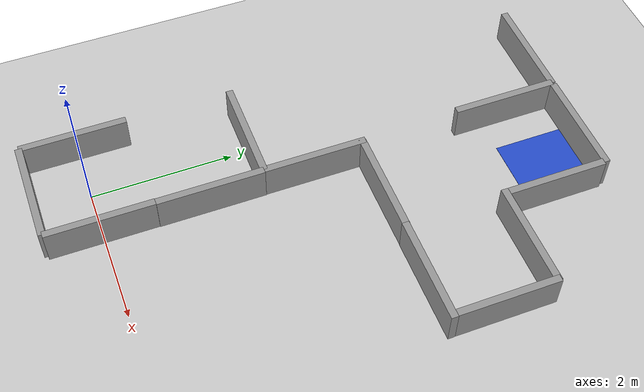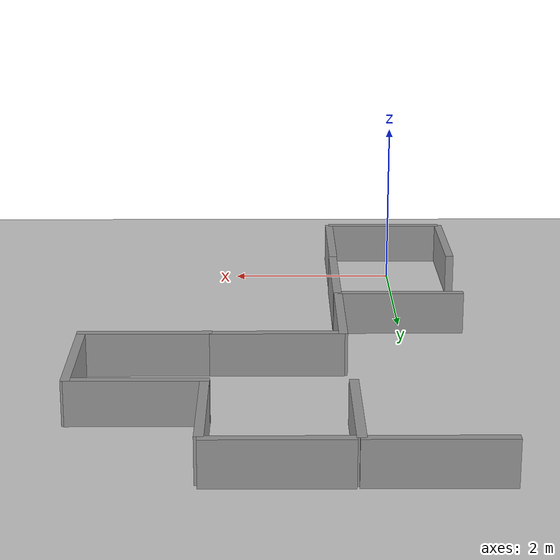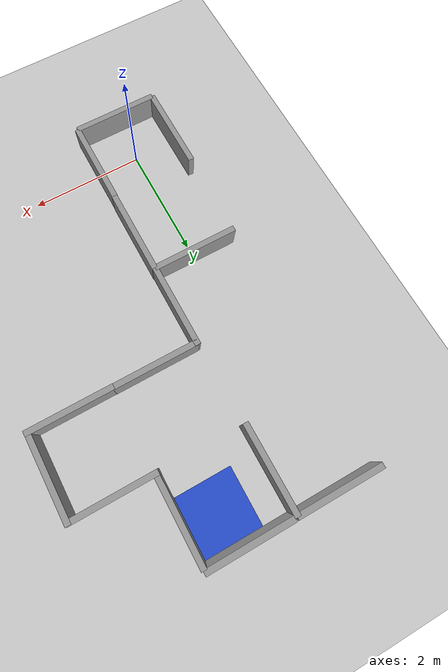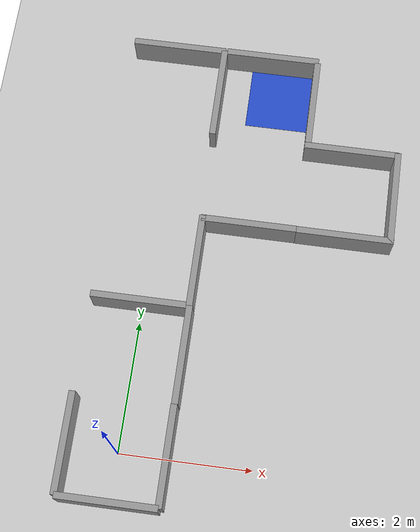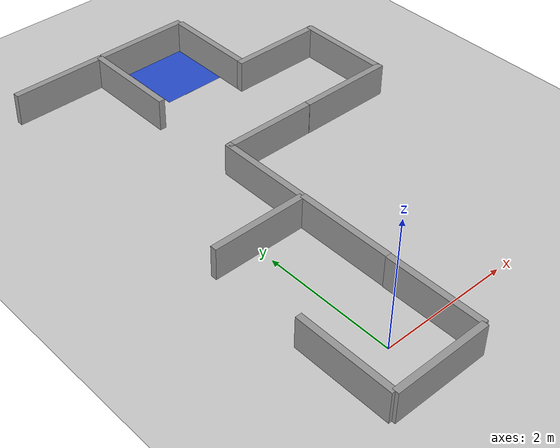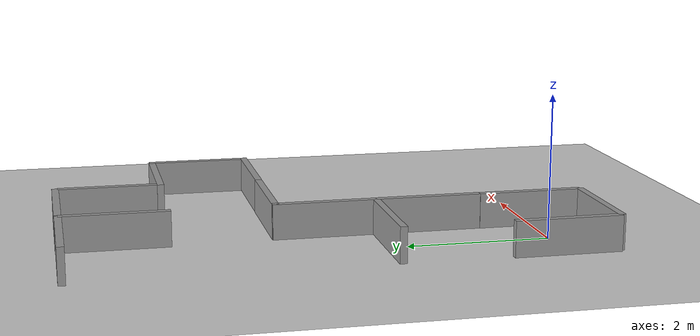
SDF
<sdf version="1.7">
 <world name="default">
  <model name="ground_plane">
   <static>1</static>
   <link name="link">
    <collision name="collision">
     <geometry><plane><normal>0 0 1</normal><size>100 100</size></plane></geometry>
     <surface>
      <contact><collide_bitmask>65535</collide_bitmask></contact>
      <friction><ode><mu>100</mu><mu2>50</mu2></ode></friction>
     </surface>
    </collision>
    <visual name="visual">
     <cast_shadows>0</cast_shadows>
     <geometry><plane><normal>0 0 1</normal><size>100 100</size></plane></geometry>
     <material>
      <script><uri>file://media/materials/scripts/gazebo.material</uri><name>Gazebo/Grey</name></script>
     </material>
    </visual>
   </link>
  </model>
  <model name="wall_big">
   <link name="link">
    <inertial>
     <mass>1</mass>
     <inertia>
      <ixx>0.166667</ixx>
      <ixy>0</ixy>
      <ixz>0</ixz>
      <iyy>0.166667</iyy>
      <iyz>0</iyz>
      <izz>0.166667</izz>
     </inertia>
    </inertial>
    <visual name="visual">
     <geometry><box><size>0.1 1.5 0.5</size></box></geometry>
     <material>
      <script><name>Gazebo/Grey</name><uri>file://media/materials/scripts/gazebo.material</uri></script>
      <shader type="pixel"><normal_map>__default__</normal_map></shader>
      <ambient>0.3 0.3 0.3 1</ambient>
      <diffuse>0.7 0.7 0.7 1</diffuse>
      <specular>0.01 0.01 0.01 1</specular>
      <emissive>0 0 0 1</emissive>
     </material>
    </visual>
    <collision name="collision">
     <geometry><box><size>0.1 1.5 0.5</size></box></geometry>
     <surface>
      <friction>
       <ode><mu>1</mu><mu2>1</mu2><fdir1>0 0 0</fdir1><slip1>0</slip1><slip2>0</slip2></ode>
       <torsional>
        <coefficient>1</coefficient>
        <patch_radius>0</patch_radius>
        <surface_radius>0</surface_radius>
        <use_patch_radius>1</use_patch_radius>
        <ode><slip>0</slip></ode>
       </torsional>
      </friction>
      <bounce><restitution_coefficient>0</restitution_coefficient><threshold>1e+06</threshold></bounce>
      <contact>
       <collide_without_contact>0</collide_without_contact>
       <collide_without_contact_bitmask>1</collide_without_contact_bitmask>
       <collide_bitmask>1</collide_bitmask>
       <ode>
        <soft_cfm>0</soft_cfm>
        <soft_erp>0.2</soft_erp>
        <kp>1e+13</kp>
        <kd>1</kd>
        <max_vel>0.01</max_vel>
        <min_depth>0</min_depth>
       </ode>
       <bullet>
        <split_impulse>1</split_impulse>
        <split_impulse_penetration_threshold>-0.01</split_impulse_penetration_threshold>
        <soft_cfm>0</soft_cfm>
        <soft_erp>0.2</soft_erp>
        <kp>1e+13</kp>
        <kd>1</kd>
       </bullet>
      </contact>
     </surface>
    </collision>
   </link>
   <static>1</static>
   <pose>0 -0.75 0.250003 1.1e-05 -0 1.5708</pose>
  </model>
  <model name="wall_big_clone">
   <link name="link">
    <inertial>
     <mass>1</mass>
     <inertia>
      <ixx>0.166667</ixx>
      <ixy>0</ixy>
      <ixz>0</ixz>
      <iyy>0.166667</iyy>
      <iyz>0</iyz>
      <izz>0.166667</izz>
     </inertia>
    </inertial>
    <visual name="visual">
     <geometry><box><size>0.1 1.5 0.5</size></box></geometry>
     <material>
      <script><name>Gazebo/Grey</name><uri>file://media/materials/scripts/gazebo.material</uri></script>
      <shader type="pixel"><normal_map>__default__</normal_map></shader>
      <ambient>0.3 0.3 0.3 1</ambient>
      <diffuse>0.7 0.7 0.7 1</diffuse>
      <specular>0.01 0.01 0.01 1</specular>
      <emissive>0 0 0 1</emissive>
     </material>
    </visual>
    <collision name="collision">
     <geometry><box><size>0.1 1.5 0.5</size></box></geometry>
     <surface>
      <friction>
       <ode><mu>1</mu><mu2>1</mu2><fdir1>0 0 0</fdir1><slip1>0</slip1><slip2>0</slip2></ode>
       <torsional>
        <coefficient>1</coefficient>
        <patch_radius>0</patch_radius>
        <surface_radius>0</surface_radius>
        <use_patch_radius>1</use_patch_radius>
        <ode><slip>0</slip></ode>
       </torsional>
      </friction>
      <bounce><restitution_coefficient>0</restitution_coefficient><threshold>1e+06</threshold></bounce>
      <contact>
       <collide_without_contact>0</collide_without_contact>
       <collide_without_contact_bitmask>1</collide_without_contact_bitmask>
       <collide_bitmask>1</collide_bitmask>
       <ode>
        <soft_cfm>0</soft_cfm>
        <soft_erp>0.2</soft_erp>
        <kp>1e+13</kp>
        <kd>1</kd>
        <max_vel>0.01</max_vel>
        <min_depth>0</min_depth>
       </ode>
       <bullet>
        <split_impulse>1</split_impulse>
        <split_impulse_penetration_threshold>-0.01</split_impulse_penetration_threshold>
        <soft_cfm>0</soft_cfm>
        <soft_erp>0.2</soft_erp>
        <kp>1e+13</kp>
        <kd>1</kd>
       </bullet>
      </contact>
     </surface>
    </collision>
   </link>
   <static>1</static>
   <pose>-0.75 0 0.250003 1.2e-05 -0 0</pose>
  </model>
  <model name="wall_big_clone_clone">
   <link name="link">
    <inertial>
     <mass>1</mass>
     <inertia>
      <ixx>0.166667</ixx>
      <ixy>0</ixy>
      <ixz>0</ixz>
      <iyy>0.166667</iyy>
      <iyz>0</iyz>
      <izz>0.166667</izz>
     </inertia>
    </inertial>
    <visual name="visual">
     <geometry><box><size>0.1 1.5 0.5</size></box></geometry>
     <material>
      <script><name>Gazebo/Grey</name><uri>file://media/materials/scripts/gazebo.material</uri></script>
      <shader type="pixel"><normal_map>__default__</normal_map></shader>
      <ambient>0.3 0.3 0.3 1</ambient>
      <diffuse>0.7 0.7 0.7 1</diffuse>
      <specular>0.01 0.01 0.01 1</specular>
      <emissive>0 0 0 1</emissive>
     </material>
    </visual>
    <collision name="collision">
     <geometry><box><size>0.1 1.5 0.5</size></box></geometry>
     <surface>
      <friction>
       <ode><mu>1</mu><mu2>1</mu2><fdir1>0 0 0</fdir1><slip1>0</slip1><slip2>0</slip2></ode>
       <torsional>
        <coefficient>1</coefficient>
        <patch_radius>0</patch_radius>
        <surface_radius>0</surface_radius>
        <use_patch_radius>1</use_patch_radius>
        <ode><slip>0</slip></ode>
       </torsional>
      </friction>
      <bounce><restitution_coefficient>0</restitution_coefficient><threshold>1e+06</threshold></bounce>
      <contact>
       <collide_without_contact>0</collide_without_contact>
       <collide_without_contact_bitmask>1</collide_without_contact_bitmask>
       <collide_bitmask>1</collide_bitmask>
       <ode>
        <soft_cfm>0</soft_cfm>
        <soft_erp>0.2</soft_erp>
        <kp>1e+13</kp>
        <kd>1</kd>
        <max_vel>0.01</max_vel>
        <min_depth>0</min_depth>
       </ode>
       <bullet>
        <split_impulse>1</split_impulse>
        <split_impulse_penetration_threshold>-0.01</split_impulse_penetration_threshold>
        <soft_cfm>0</soft_cfm>
        <soft_erp>0.2</soft_erp>
        <kp>1e+13</kp>
        <kd>1</kd>
       </bullet>
      </contact>
     </surface>
    </collision>
   </link>
   <static>1</static>
   <pose>0.75 0 0.250003 1.2e-05 -0 0</pose>
  </model>
  <model name="wall_big_clone_clone_clone">
   <link name="link">
    <inertial>
     <mass>1</mass>
     <inertia>
      <ixx>0.166667</ixx>
      <ixy>0</ixy>
      <ixz>0</ixz>
      <iyy>0.166667</iyy>
      <iyz>0</iyz>
      <izz>0.166667</izz>
     </inertia>
    </inertial>
    <visual name="visual">
     <geometry><box><size>0.1 1.5 0.5</size></box></geometry>
     <material>
      <script><name>Gazebo/Grey</name><uri>file://media/materials/scripts/gazebo.material</uri></script>
      <shader type="pixel"><normal_map>__default__</normal_map></shader>
      <ambient>0.3 0.3 0.3 1</ambient>
      <diffuse>0.7 0.7 0.7 1</diffuse>
      <specular>0.01 0.01 0.01 1</specular>
      <emissive>0 0 0 1</emissive>
     </material>
    </visual>
    <collision name="collision">
     <geometry><box><size>0.1 1.5 0.5</size></box></geometry>
     <surface>
      <friction>
       <ode><mu>1</mu><mu2>1</mu2><fdir1>0 0 0</fdir1><slip1>0</slip1><slip2>0</slip2></ode>
       <torsional>
        <coefficient>1</coefficient>
        <patch_radius>0</patch_radius>
        <surface_radius>0</surface_radius>
        <use_patch_radius>1</use_patch_radius>
        <ode><slip>0</slip></ode>
       </torsional>
      </friction>
      <bounce><restitution_coefficient>0</restitution_coefficient><threshold>1e+06</threshold></bounce>
      <contact>
       <collide_without_contact>0</collide_without_contact>
       <collide_without_contact_bitmask>1</collide_without_contact_bitmask>
       <collide_bitmask>1</collide_bitmask>
       <ode>
        <soft_cfm>0</soft_cfm>
        <soft_erp>0.2</soft_erp>
        <kp>1e+13</kp>
        <kd>1</kd>
        <max_vel>0.01</max_vel>
        <min_depth>0</min_depth>
       </ode>
       <bullet>
        <split_impulse>1</split_impulse>
        <split_impulse_penetration_threshold>-0.01</split_impulse_penetration_threshold>
        <soft_cfm>0</soft_cfm>
        <soft_erp>0.2</soft_erp>
        <kp>1e+13</kp>
        <kd>1</kd>
       </bullet>
      </contact>
     </surface>
    </collision>
   </link>
   <static>1</static>
   <pose>0.756325 1.5 0.250003 1.2e-05 -0 0</pose>
  </model>
  <model name="wall_big_clone_0">
   <link name="link">
    <inertial>
     <mass>1</mass>
     <inertia>
      <ixx>0.166667</ixx>
      <ixy>0</ixy>
      <ixz>0</ixz>
      <iyy>0.166667</iyy>
      <iyz>0</iyz>
      <izz>0.166667</izz>
     </inertia>
    </inertial>
    <visual name="visual">
     <geometry><box><size>0.1 1.5 0.5</size></box></geometry>
     <material>
      <script><name>Gazebo/Grey</name><uri>file://media/materials/scripts/gazebo.material</uri></script>
      <shader type="pixel"><normal_map>__default__</normal_map></shader>
      <ambient>0.3 0.3 0.3 1</ambient>
      <diffuse>0.7 0.7 0.7 1</diffuse>
      <specular>0.01 0.01 0.01 1</specular>
      <emissive>0 0 0 1</emissive>
     </material>
    </visual>
    <collision name="collision">
     <geometry><box><size>0.1 1.5 0.5</size></box></geometry>
     <surface>
      <friction>
       <ode><mu>1</mu><mu2>1</mu2><fdir1>0 0 0</fdir1><slip1>0</slip1><slip2>0</slip2></ode>
       <torsional>
        <coefficient>1</coefficient>
        <patch_radius>0</patch_radius>
        <surface_radius>0</surface_radius>
        <use_patch_radius>1</use_patch_radius>
        <ode><slip>0</slip></ode>
       </torsional>
      </friction>
      <bounce><restitution_coefficient>0</restitution_coefficient><threshold>1e+06</threshold></bounce>
      <contact>
       <collide_without_contact>0</collide_without_contact>
       <collide_without_contact_bitmask>1</collide_without_contact_bitmask>
       <collide_bitmask>1</collide_bitmask>
       <ode>
        <soft_cfm>0</soft_cfm>
        <soft_erp>0.2</soft_erp>
        <kp>1e+13</kp>
        <kd>1</kd>
        <max_vel>0.01</max_vel>
        <min_depth>0</min_depth>
       </ode>
       <bullet>
        <split_impulse>1</split_impulse>
        <split_impulse_penetration_threshold>-0.01</split_impulse_penetration_threshold>
        <soft_cfm>0</soft_cfm>
        <soft_erp>0.2</soft_erp>
        <kp>1e+13</kp>
        <kd>1</kd>
       </bullet>
      </contact>
     </surface>
    </collision>
   </link>
   <static>1</static>
   <pose>0 2.25 0.250003 1.1e-05 -0 1.5708</pose>
  </model>
  <model name="wall_big_clone_clone_clone_clone">
   <link name="link">
    <inertial>
     <mass>1</mass>
     <inertia>
      <ixx>0.166667</ixx>
      <ixy>0</ixy>
      <ixz>0</ixz>
      <iyy>0.166667</iyy>
      <iyz>0</iyz>
      <izz>0.166667</izz>
     </inertia>
    </inertial>
    <visual name="visual">
     <geometry><box><size>0.1 1.5 0.5</size></box></geometry>
     <material>
      <script><name>Gazebo/Grey</name><uri>file://media/materials/scripts/gazebo.material</uri></script>
      <shader type="pixel"><normal_map>__default__</normal_map></shader>
      <ambient>0.3 0.3 0.3 1</ambient>
      <diffuse>0.7 0.7 0.7 1</diffuse>
      <specular>0.01 0.01 0.01 1</specular>
      <emissive>0 0 0 1</emissive>
     </material>
    </visual>
    <collision name="collision">
     <geometry><box><size>0.1 1.5 0.5</size></box></geometry>
     <surface>
      <friction>
       <ode><mu>1</mu><mu2>1</mu2><fdir1>0 0 0</fdir1><slip1>0</slip1><slip2>0</slip2></ode>
       <torsional>
        <coefficient>1</coefficient>
        <patch_radius>0</patch_radius>
        <surface_radius>0</surface_radius>
        <use_patch_radius>1</use_patch_radius>
        <ode><slip>0</slip></ode>
       </torsional>
      </friction>
      <bounce><restitution_coefficient>0</restitution_coefficient><threshold>1e+06</threshold></bounce>
      <contact>
       <collide_without_contact>0</collide_without_contact>
       <collide_without_contact_bitmask>1</collide_without_contact_bitmask>
       <collide_bitmask>1</collide_bitmask>
       <ode>
        <soft_cfm>0</soft_cfm>
        <soft_erp>0.2</soft_erp>
        <kp>1e+13</kp>
        <kd>1</kd>
        <max_vel>0.01</max_vel>
        <min_depth>0</min_depth>
       </ode>
       <bullet>
        <split_impulse>1</split_impulse>
        <split_impulse_penetration_threshold>-0.01</split_impulse_penetration_threshold>
        <soft_cfm>0</soft_cfm>
        <soft_erp>0.2</soft_erp>
        <kp>1e+13</kp>
        <kd>1</kd>
       </bullet>
      </contact>
     </surface>
    </collision>
   </link>
   <static>1</static>
   <pose>0.749594 2.96215 0.250003 1.2e-05 -0 0</pose>
  </model>
  <model name="wall_big_clone_0_clone_clone_0_clone">
   <link name="link">
    <inertial>
     <mass>1</mass>
     <inertia>
      <ixx>0.166667</ixx>
      <ixy>0</ixy>
      <ixz>0</ixz>
      <iyy>0.166667</iyy>
      <iyz>0</iyz>
      <izz>0.166667</izz>
     </inertia>
    </inertial>
    <visual name="visual">
     <geometry><box><size>0.1 1.5 0.5</size></box></geometry>
     <material>
      <script><name>Gazebo/Grey</name><uri>file://media/materials/scripts/gazebo.material</uri></script>
      <shader type="pixel"><normal_map>__default__</normal_map></shader>
      <ambient>0.3 0.3 0.3 1</ambient>
      <diffuse>0.7 0.7 0.7 1</diffuse>
      <specular>0.01 0.01 0.01 1</specular>
      <emissive>0 0 0 1</emissive>
     </material>
    </visual>
    <collision name="collision">
     <geometry><box><size>0.1 1.5 0.5</size></box></geometry>
     <surface>
      <friction>
       <ode><mu>1</mu><mu2>1</mu2><fdir1>0 0 0</fdir1><slip1>0</slip1><slip2>0</slip2></ode>
       <torsional>
        <coefficient>1</coefficient>
        <patch_radius>0</patch_radius>
        <surface_radius>0</surface_radius>
        <use_patch_radius>1</use_patch_radius>
        <ode><slip>0</slip></ode>
       </torsional>
      </friction>
      <bounce><restitution_coefficient>0</restitution_coefficient><threshold>1e+06</threshold></bounce>
      <contact>
       <collide_without_contact>0</collide_without_contact>
       <collide_without_contact_bitmask>1</collide_without_contact_bitmask>
       <collide_bitmask>1</collide_bitmask>
       <ode>
        <soft_cfm>0</soft_cfm>
        <soft_erp>0.2</soft_erp>
        <kp>1e+13</kp>
        <kd>1</kd>
        <max_vel>0.01</max_vel>
        <min_depth>0</min_depth>
       </ode>
       <bullet>
        <split_impulse>1</split_impulse>
        <split_impulse_penetration_threshold>-0.01</split_impulse_penetration_threshold>
        <soft_cfm>0</soft_cfm>
        <soft_erp>0.2</soft_erp>
        <kp>1e+13</kp>
        <kd>1</kd>
       </bullet>
      </contact>
     </surface>
    </collision>
   </link>
   <static>1</static>
   <pose>1.48269 3.6697 0.250003 1.1e-05 -0 1.5708</pose>
  </model>
  <model name="wall_big_clone_0_clone_clone_0_clone_0">
   <link name="link">
    <inertial>
     <mass>1</mass>
     <inertia>
      <ixx>0.166667</ixx>
      <ixy>0</ixy>
      <ixz>0</ixz>
      <iyy>0.166667</iyy>
      <iyz>0</iyz>
      <izz>0.166667</izz>
     </inertia>
    </inertial>
    <visual name="visual">
     <geometry><box><size>0.1 1.5 0.5</size></box></geometry>
     <material>
      <script><name>Gazebo/Grey</name><uri>file://media/materials/scripts/gazebo.material</uri></script>
      <shader type="pixel"><normal_map>__default__</normal_map></shader>
      <ambient>0.3 0.3 0.3 1</ambient>
      <diffuse>0.7 0.7 0.7 1</diffuse>
      <specular>0.01 0.01 0.01 1</specular>
      <emissive>0 0 0 1</emissive>
     </material>
    </visual>
    <collision name="collision">
     <geometry><box><size>0.1 1.5 0.5</size></box></geometry>
     <surface>
      <friction>
       <ode><mu>1</mu><mu2>1</mu2><fdir1>0 0 0</fdir1><slip1>0</slip1><slip2>0</slip2></ode>
       <torsional>
        <coefficient>1</coefficient>
        <patch_radius>0</patch_radius>
        <surface_radius>0</surface_radius>
        <use_patch_radius>1</use_patch_radius>
        <ode><slip>0</slip></ode>
       </torsional>
      </friction>
      <bounce><restitution_coefficient>0</restitution_coefficient><threshold>1e+06</threshold></bounce>
      <contact>
       <collide_without_contact>0</collide_without_contact>
       <collide_without_contact_bitmask>1</collide_without_contact_bitmask>
       <collide_bitmask>1</collide_bitmask>
       <ode>
        <soft_cfm>0</soft_cfm>
        <soft_erp>0.2</soft_erp>
        <kp>1e+13</kp>
        <kd>1</kd>
        <max_vel>0.01</max_vel>
        <min_depth>0</min_depth>
       </ode>
       <bullet>
        <split_impulse>1</split_impulse>
        <split_impulse_penetration_threshold>-0.01</split_impulse_penetration_threshold>
        <soft_cfm>0</soft_cfm>
        <soft_erp>0.2</soft_erp>
        <kp>1e+13</kp>
        <kd>1</kd>
       </bullet>
      </contact>
     </surface>
    </collision>
   </link>
   <static>1</static>
   <pose>2.95405 3.66621 0.250003 1.1e-05 -0 1.5708</pose>
  </model>
  <model name="wall_big_clone_0_clone_clone_0_clone_3">
   <link name="link">
    <inertial>
     <mass>1</mass>
     <inertia>
      <ixx>0.166667</ixx>
      <ixy>0</ixy>
      <ixz>0</ixz>
      <iyy>0.166667</iyy>
      <iyz>0</iyz>
      <izz>0.166667</izz>
     </inertia>
    </inertial>
    <visual name="visual">
     <geometry><box><size>0.1 1.5 0.5</size></box></geometry>
     <material>
      <script><name>Gazebo/Grey</name><uri>file://media/materials/scripts/gazebo.material</uri></script>
      <shader type="pixel"><normal_map>__default__</normal_map></shader>
      <ambient>0.3 0.3 0.3 1</ambient>
      <diffuse>0.7 0.7 0.7 1</diffuse>
      <specular>0.01 0.01 0.01 1</specular>
      <emissive>0 0 0 1</emissive>
     </material>
    </visual>
    <collision name="collision">
     <geometry><box><size>0.1 1.5 0.5</size></box></geometry>
     <surface>
      <friction>
       <ode><mu>1</mu><mu2>1</mu2><fdir1>0 0 0</fdir1><slip1>0</slip1><slip2>0</slip2></ode>
       <torsional>
        <coefficient>1</coefficient>
        <patch_radius>0</patch_radius>
        <surface_radius>0</surface_radius>
        <use_patch_radius>1</use_patch_radius>
        <ode><slip>0</slip></ode>
       </torsional>
      </friction>
      <bounce><restitution_coefficient>0</restitution_coefficient><threshold>1e+06</threshold></bounce>
      <contact>
       <collide_without_contact>0</collide_without_contact>
       <collide_without_contact_bitmask>1</collide_without_contact_bitmask>
       <collide_bitmask>1</collide_bitmask>
       <ode>
        <soft_cfm>0</soft_cfm>
        <soft_erp>0.2</soft_erp>
        <kp>1e+13</kp>
        <kd>1</kd>
        <max_vel>0.01</max_vel>
        <min_depth>0</min_depth>
       </ode>
       <bullet>
        <split_impulse>1</split_impulse>
        <split_impulse_penetration_threshold>-0.01</split_impulse_penetration_threshold>
        <soft_cfm>0</soft_cfm>
        <soft_erp>0.2</soft_erp>
        <kp>1e+13</kp>
        <kd>1</kd>
       </bullet>
      </contact>
     </surface>
    </collision>
   </link>
   <static>1</static>
   <pose>-0.027137 6.5915 0.250001 1.1e-05 -0 1.5708</pose>
  </model>
  <model name="wall_big_clone_clone_0_clone_1_clone_clone_0">
   <link name="link">
    <inertial>
     <mass>1</mass>
     <inertia>
      <ixx>0.166667</ixx>
      <ixy>0</ixy>
      <ixz>0</ixz>
      <iyy>0.166667</iyy>
      <iyz>0</iyz>
      <izz>0.166667</izz>
     </inertia>
    </inertial>
    <visual name="visual">
     <geometry><box><size>0.1 1.5 0.5</size></box></geometry>
     <material>
      <script><name>Gazebo/Grey</name><uri>file://media/materials/scripts/gazebo.material</uri></script>
      <shader type="pixel"><normal_map>__default__</normal_map></shader>
      <ambient>0.3 0.3 0.3 1</ambient>
      <diffuse>0.7 0.7 0.7 1</diffuse>
      <specular>0.01 0.01 0.01 1</specular>
      <emissive>0 0 0 1</emissive>
     </material>
    </visual>
    <collision name="collision">
     <geometry><box><size>0.1 1.5 0.5</size></box></geometry>
     <surface>
      <friction>
       <ode><mu>1</mu><mu2>1</mu2><fdir1>0 0 0</fdir1><slip1>0</slip1><slip2>0</slip2></ode>
       <torsional>
        <coefficient>1</coefficient>
        <patch_radius>0</patch_radius>
        <surface_radius>0</surface_radius>
        <use_patch_radius>1</use_patch_radius>
        <ode><slip>0</slip></ode>
       </torsional>
      </friction>
      <bounce><restitution_coefficient>0</restitution_coefficient><threshold>1e+06</threshold></bounce>
      <contact>
       <collide_without_contact>0</collide_without_contact>
       <collide_without_contact_bitmask>1</collide_without_contact_bitmask>
       <collide_bitmask>1</collide_bitmask>
       <ode>
        <soft_cfm>0</soft_cfm>
        <soft_erp>0.2</soft_erp>
        <kp>1e+13</kp>
        <kd>1</kd>
        <max_vel>0.01</max_vel>
        <min_depth>0</min_depth>
       </ode>
       <bullet>
        <split_impulse>1</split_impulse>
        <split_impulse_penetration_threshold>-0.01</split_impulse_penetration_threshold>
        <soft_cfm>0</soft_cfm>
        <soft_erp>0.2</soft_erp>
        <kp>1e+13</kp>
        <kd>1</kd>
       </bullet>
      </contact>
     </surface>
    </collision>
   </link>
   <static>1</static>
   <pose>3.65203 4.38753 0.250003 1.2e-05 -0 0</pose>
  </model>
  <model name="wall_big_clone_0_clone_clone_0_clone_3_clone">
   <link name="link">
    <inertial>
     <mass>1</mass>
     <inertia>
      <ixx>0.166667</ixx>
      <ixy>0</ixy>
      <ixz>0</ixz>
      <iyy>0.166667</iyy>
      <iyz>0</iyz>
      <izz>0.166667</izz>
     </inertia>
    </inertial>
    <visual name="visual">
     <geometry><box><size>0.1 1.5 0.5</size></box></geometry>
     <material>
      <script><name>Gazebo/Grey</name><uri>file://media/materials/scripts/gazebo.material</uri></script>
      <shader type="pixel"><normal_map>__default__</normal_map></shader>
      <ambient>0.3 0.3 0.3 1</ambient>
      <diffuse>0.7 0.7 0.7 1</diffuse>
      <specular>0.01 0.01 0.01 1</specular>
      <emissive>0 0 0 1</emissive>
     </material>
    </visual>
    <collision name="collision">
     <geometry><box><size>0.1 1.5 0.5</size></box></geometry>
     <surface>
      <friction>
       <ode><mu>1</mu><mu2>1</mu2><fdir1>0 0 0</fdir1><slip1>0</slip1><slip2>0</slip2></ode>
       <torsional>
        <coefficient>1</coefficient>
        <patch_radius>0</patch_radius>
        <surface_radius>0</surface_radius>
        <use_patch_radius>1</use_patch_radius>
        <ode><slip>0</slip></ode>
       </torsional>
      </friction>
      <bounce><restitution_coefficient>0</restitution_coefficient><threshold>1e+06</threshold></bounce>
      <contact>
       <collide_without_contact>0</collide_without_contact>
       <collide_without_contact_bitmask>1</collide_without_contact_bitmask>
       <collide_bitmask>1</collide_bitmask>
       <ode>
        <soft_cfm>0</soft_cfm>
        <soft_erp>0.2</soft_erp>
        <kp>1e+13</kp>
        <kd>1</kd>
        <max_vel>0.01</max_vel>
        <min_depth>0</min_depth>
       </ode>
       <bullet>
        <split_impulse>1</split_impulse>
        <split_impulse_penetration_threshold>-0.01</split_impulse_penetration_threshold>
        <soft_cfm>0</soft_cfm>
        <soft_erp>0.2</soft_erp>
        <kp>1e+13</kp>
        <kd>1</kd>
       </bullet>
      </contact>
     </surface>
    </collision>
   </link>
   <static>1</static>
   <pose>2.92623 5.09807 0.250003 1.1e-05 -0 1.5708</pose>
  </model>
  <model name="wall_big_clone_clone_0_clone_1_clone_clone_clone">
   <link name="link">
    <inertial>
     <mass>1</mass>
     <inertia>
      <ixx>0.166667</ixx>
      <ixy>0</ixy>
      <ixz>0</ixz>
      <iyy>0.166667</iyy>
      <iyz>0</iyz>
      <izz>0.166667</izz>
     </inertia>
    </inertial>
    <visual name="visual">
     <geometry><box><size>0.1 1.5 0.5</size></box></geometry>
     <material>
      <script><name>Gazebo/Grey</name><uri>file://media/materials/scripts/gazebo.material</uri></script>
      <shader type="pixel"><normal_map>__default__</normal_map></shader>
      <ambient>0.3 0.3 0.3 1</ambient>
      <diffuse>0.7 0.7 0.7 1</diffuse>
      <specular>0.01 0.01 0.01 1</specular>
      <emissive>0 0 0 1</emissive>
     </material>
    </visual>
    <collision name="collision">
     <geometry><box><size>0.1 1.5 0.5</size></box></geometry>
     <surface>
      <friction>
       <ode><mu>1</mu><mu2>1</mu2><fdir1>0 0 0</fdir1><slip1>0</slip1><slip2>0</slip2></ode>
       <torsional>
        <coefficient>1</coefficient>
        <patch_radius>0</patch_radius>
        <surface_radius>0</surface_radius>
        <use_patch_radius>1</use_patch_radius>
        <ode><slip>0</slip></ode>
       </torsional>
      </friction>
      <bounce><restitution_coefficient>0</restitution_coefficient><threshold>1e+06</threshold></bounce>
      <contact>
       <collide_without_contact>0</collide_without_contact>
       <collide_without_contact_bitmask>1</collide_without_contact_bitmask>
       <collide_bitmask>1</collide_bitmask>
       <ode>
        <soft_cfm>0</soft_cfm>
        <soft_erp>0.2</soft_erp>
        <kp>1e+13</kp>
        <kd>1</kd>
        <max_vel>0.01</max_vel>
        <min_depth>0</min_depth>
       </ode>
       <bullet>
        <split_impulse>1</split_impulse>
        <split_impulse_penetration_threshold>-0.01</split_impulse_penetration_threshold>
        <soft_cfm>0</soft_cfm>
        <soft_erp>0.2</soft_erp>
        <kp>1e+13</kp>
        <kd>1</kd>
       </bullet>
      </contact>
     </surface>
    </collision>
   </link>
   <static>1</static>
   <pose>2.22815 5.81423 0.250003 1.2e-05 -0 0</pose>
  </model>
  <model name="wall_big_clone_0_clone_clone_0_clone_3_clone_0">
   <link name="link">
    <inertial>
     <mass>1</mass>
     <inertia>
      <ixx>0.166667</ixx>
      <ixy>0</ixy>
      <ixz>0</ixz>
      <iyy>0.166667</iyy>
      <iyz>0</iyz>
      <izz>0.166667</izz>
     </inertia>
    </inertial>
    <visual name="visual">
     <geometry><box><size>0.1 1.5 0.5</size></box></geometry>
     <material>
      <script><name>Gazebo/Grey</name><uri>file://media/materials/scripts/gazebo.material</uri></script>
      <shader type="pixel"><normal_map>__default__</normal_map></shader>
      <ambient>0.3 0.3 0.3 1</ambient>
      <diffuse>0.7 0.7 0.7 1</diffuse>
      <specular>0.01 0.01 0.01 1</specular>
      <emissive>0 0 0 1</emissive>
     </material>
    </visual>
    <collision name="collision">
     <geometry><box><size>0.1 1.5 0.5</size></box></geometry>
     <surface>
      <friction>
       <ode><mu>1</mu><mu2>1</mu2><fdir1>0 0 0</fdir1><slip1>0</slip1><slip2>0</slip2></ode>
       <torsional>
        <coefficient>1</coefficient>
        <patch_radius>0</patch_radius>
        <surface_radius>0</surface_radius>
        <use_patch_radius>1</use_patch_radius>
        <ode><slip>0</slip></ode>
       </torsional>
      </friction>
      <bounce><restitution_coefficient>0</restitution_coefficient><threshold>1e+06</threshold></bounce>
      <contact>
       <collide_without_contact>0</collide_without_contact>
       <collide_without_contact_bitmask>1</collide_without_contact_bitmask>
       <collide_bitmask>1</collide_bitmask>
       <ode>
        <soft_cfm>0</soft_cfm>
        <soft_erp>0.2</soft_erp>
        <kp>1e+13</kp>
        <kd>1</kd>
        <max_vel>0.01</max_vel>
        <min_depth>0</min_depth>
       </ode>
       <bullet>
        <split_impulse>1</split_impulse>
        <split_impulse_penetration_threshold>-0.01</split_impulse_penetration_threshold>
        <soft_cfm>0</soft_cfm>
        <soft_erp>0.2</soft_erp>
        <kp>1e+13</kp>
        <kd>1</kd>
       </bullet>
      </contact>
     </surface>
    </collision>
   </link>
   <static>1</static>
   <pose>1.4954 6.59481 0.25 1.1e-05 -0 1.5708</pose>
  </model>
  <model name="wall_big_clone_clone_0_clone_1_clone_clone_clone_1">
   <link name="link">
    <inertial>
     <mass>1</mass>
     <inertia>
      <ixx>0.166667</ixx>
      <ixy>0</ixy>
      <ixz>0</ixz>
      <iyy>0.166667</iyy>
      <iyz>0</iyz>
      <izz>0.166667</izz>
     </inertia>
    </inertial>
    <visual name="visual">
     <geometry><box><size>0.1 1.5 0.5</size></box></geometry>
     <material>
      <script><name>Gazebo/Grey</name><uri>file://media/materials/scripts/gazebo.material</uri></script>
      <shader type="pixel"><normal_map>__default__</normal_map></shader>
      <ambient>0.3 0.3 0.3 1</ambient>
      <diffuse>0.7 0.7 0.7 1</diffuse>
      <specular>0.01 0.01 0.01 1</specular>
      <emissive>0 0 0 1</emissive>
     </material>
    </visual>
    <collision name="collision">
     <geometry><box><size>0.1 1.5 0.5</size></box></geometry>
     <surface>
      <friction>
       <ode><mu>1</mu><mu2>1</mu2><fdir1>0 0 0</fdir1><slip1>0</slip1><slip2>0</slip2></ode>
       <torsional>
        <coefficient>1</coefficient>
        <patch_radius>0</patch_radius>
        <surface_radius>0</surface_radius>
        <use_patch_radius>1</use_patch_radius>
        <ode><slip>0</slip></ode>
       </torsional>
      </friction>
      <bounce><restitution_coefficient>0</restitution_coefficient><threshold>1e+06</threshold></bounce>
      <contact>
       <collide_without_contact>0</collide_without_contact>
       <collide_without_contact_bitmask>1</collide_without_contact_bitmask>
       <collide_bitmask>1</collide_bitmask>
       <ode>
        <soft_cfm>0</soft_cfm>
        <soft_erp>0.2</soft_erp>
        <kp>1e+13</kp>
        <kd>1</kd>
        <max_vel>0.01</max_vel>
        <min_depth>0</min_depth>
       </ode>
       <bullet>
        <split_impulse>1</split_impulse>
        <split_impulse_penetration_threshold>-0.01</split_impulse_penetration_threshold>
        <soft_cfm>0</soft_cfm>
        <soft_erp>0.2</soft_erp>
        <kp>1e+13</kp>
        <kd>1</kd>
       </bullet>
      </contact>
     </surface>
    </collision>
   </link>
   <static>1</static>
   <pose>0.705509 5.84788 0.250003 1.2e-05 -0 0</pose>
  </model>
  <model name="blue_floor_marker">
   <link name="link">
    <inertial>
     <mass>1</mass>
     <inertia>
      <ixx>0.166667</ixx>
      <ixy>0</ixy>
      <ixz>0</ixz>
      <iyy>0.166667</iyy>
      <iyz>0</iyz>
      <izz>0.166667</izz>
     </inertia>
    </inertial>
    <visual name="visual">
     <geometry><box><size>1 1 0.001</size></box></geometry>
     <material>
      <script><name>Gazebo/Blue</name><uri>file://media/materials/scripts/gazebo.material</uri></script>
      <shader type="pixel"><normal_map>__default__</normal_map></shader>
      <ambient>0 0 1 1</ambient>
      <diffuse>0 0 1 1</diffuse>
      <specular>0.1 0.1 0.1 1</specular>
      <emissive>0 0 0 1</emissive>
     </material>
    </visual>
   </link>
   <static>1</static>
   <pose>1.67857 6.05275 0 0 -0 0</pose>
  </model>
 </world>
</sdf>
